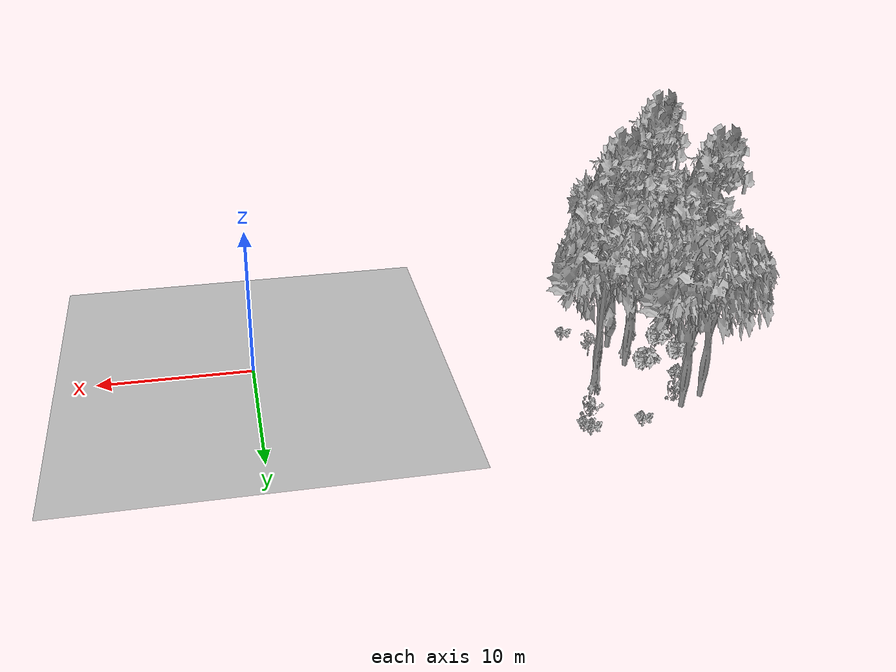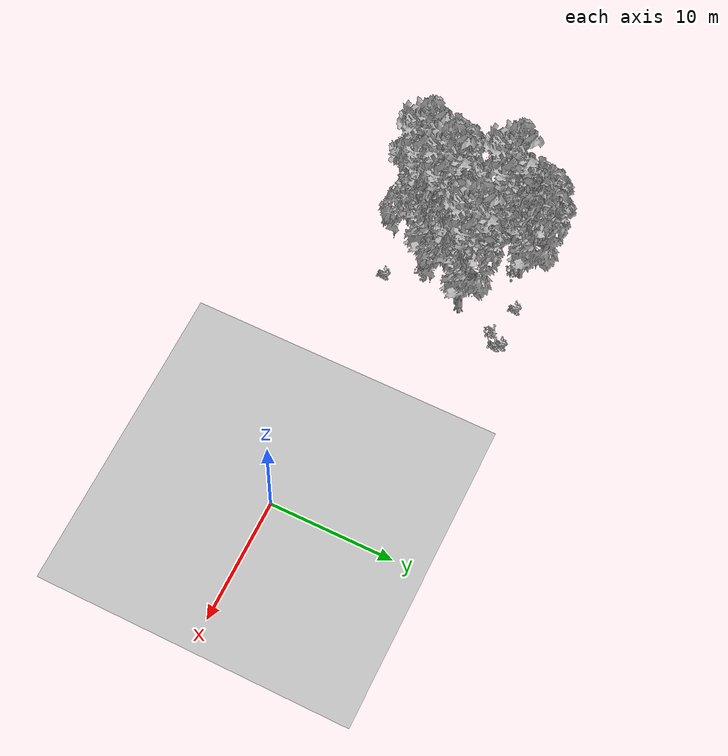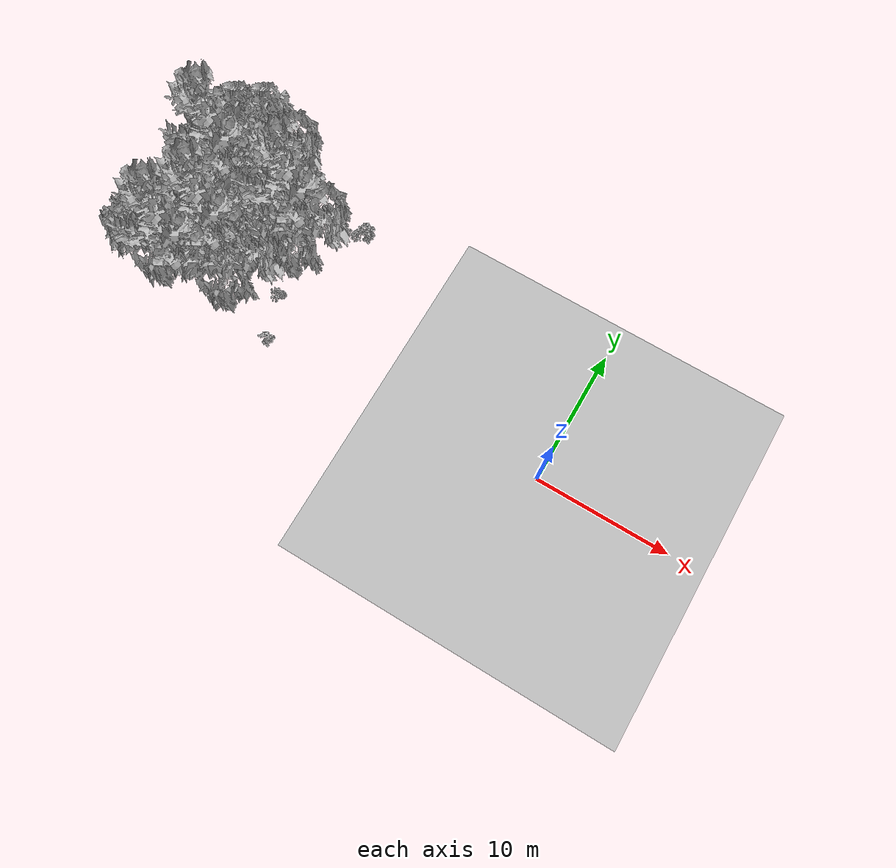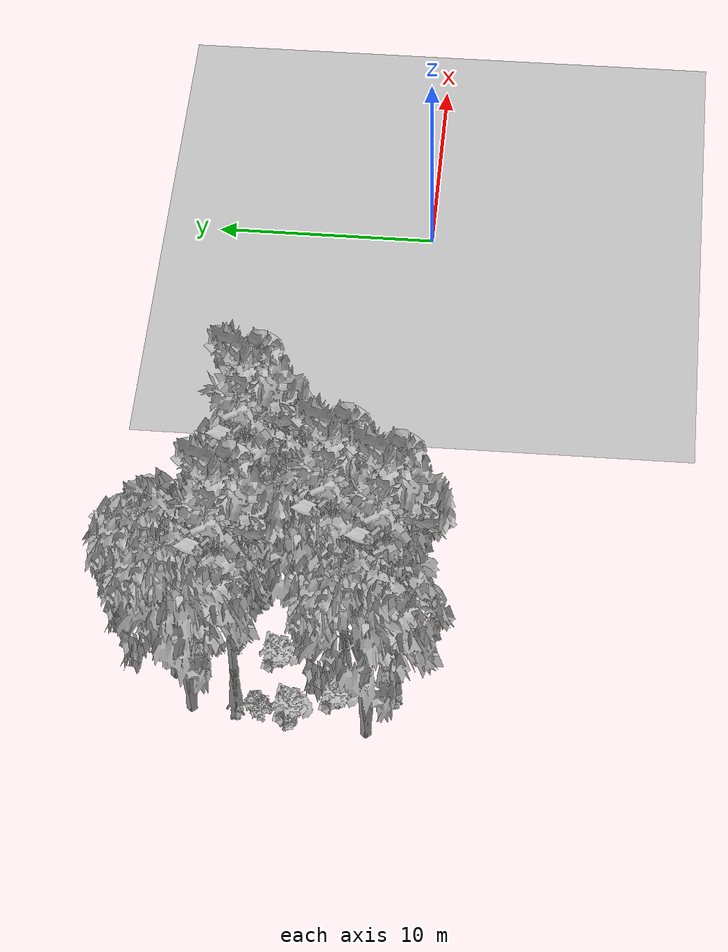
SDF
<sdf version="1.7">
 <world name="default">
  <model name="ground_plane">
   <static>1</static>
   <link name="link">
    <collision name="collision">
     <pose>-50 0 0 0 -0 0</pose>
     <geometry><plane><normal>0 0 1</normal><size>80 80</size></plane></geometry>
     <surface><contact><ode><min_depth>0.01</min_depth><max_vel>0</max_vel></ode></contact></surface>
    </collision>
    <visual name="grass">
     <cast_shadows>0</cast_shadows>
     <geometry>
      <mesh>
       <scale>0.46714285714285714 0.46714285714285714 0.1</scale>
       <uri>file://grass_plane/meshes/grass_plane.dae</uri>
      </mesh>
     </geometry>
    </visual>
   </link>
  </model>
  <model name="Tree 159">
   <static>1</static>
   <pose>-24.911423069452937 1.764224771700782 0 1.57079 -0 0</pose>
   <link name="link">
    <collision name="collision">
     <geometry><mesh><scale>3.5 5 3.5</scale><uri>model://tree_9/meshes/tree_9.obj</uri></mesh></geometry>
    </collision>
    <visual name="visual">
     <geometry><mesh><scale>3.5 5 3.5</scale><uri>model://tree_9/meshes/tree_9.obj</uri></mesh></geometry>
    </visual>
   </link>
  </model>
  <model name="Tree 245">
   <static>1</static>
   <pose>-28.339053544495343 0.5656820611772702 0 1.57079 -0 0</pose>
   <link name="link">
    <collision name="collision">
     <geometry><mesh><scale>3.5 5 3.5</scale><uri>model://tree_2/meshes/tree_2.obj</uri></mesh></geometry>
    </collision>
    <visual name="visual">
     <geometry><mesh><scale>3.5 5 3.5</scale><uri>model://tree_2/meshes/tree_2.obj</uri></mesh></geometry>
    </visual>
   </link>
  </model>
  <model name="Tree 246">
   <static>1</static>
   <pose>-27.566099973097685 7.866502859394124 0 1.57079 -0 0</pose>
   <link name="link">
    <collision name="collision">
     <geometry><mesh><scale>3.5 5 3.5</scale><uri>model://tree_2/meshes/tree_2.obj</uri></mesh></geometry>
    </collision>
    <visual name="visual">
     <geometry><mesh><scale>3.5 5 3.5</scale><uri>model://tree_2/meshes/tree_2.obj</uri></mesh></geometry>
    </visual>
   </link>
  </model>
  <model name="Tree 287">
   <static>1</static>
   <pose>-26.115918814455213 -0.43354290498221815 0 1.57079 -0 0</pose>
   <link name="link">
    <collision name="collision">
     <geometry><mesh><scale>3.5 5 3.5</scale><uri>model://tree_9/meshes/tree_9.obj</uri></mesh></geometry>
    </collision>
    <visual name="visual">
     <geometry><mesh><scale>3.5 5 3.5</scale><uri>model://tree_9/meshes/tree_9.obj</uri></mesh></geometry>
    </visual>
   </link>
  </model>
  <model name="Tree 354">
   <static>1</static>
   <pose>-23.87134144176006 1.2310103569757302 0 1.57079 -0 0</pose>
   <link name="link">
    <collision name="collision">
     <geometry><mesh><scale>3.5 5 3.5</scale><uri>model://tree_2/meshes/tree_2.obj</uri></mesh></geometry>
    </collision>
    <visual name="visual">
     <geometry><mesh><scale>3.5 5 3.5</scale><uri>model://tree_2/meshes/tree_2.obj</uri></mesh></geometry>
    </visual>
   </link>
  </model>
  <model name="Tree 374">
   <static>1</static>
   <pose>-24.205251933002387 3.625154455407227 0 1.57079 -0 0</pose>
   <link name="link">
    <collision name="collision">
     <geometry><mesh><scale>3.5 5 3.5</scale><uri>model://tree_2/meshes/tree_2.obj</uri></mesh></geometry>
    </collision>
    <visual name="visual">
     <geometry><mesh><scale>3.5 5 3.5</scale><uri>model://tree_2/meshes/tree_2.obj</uri></mesh></geometry>
    </visual>
   </link>
  </model>
  <model name="Tree 384">
   <static>1</static>
   <pose>-21.531050936556625 5.283478019215991 0 1.57079 -0 0</pose>
   <link name="link">
    <collision name="collision">
     <geometry><mesh><scale>3.5 5 3.5</scale><uri>model://tree_2/meshes/tree_2.obj</uri></mesh></geometry>
    </collision>
    <visual name="visual">
     <geometry><mesh><scale>3.5 5 3.5</scale><uri>model://tree_2/meshes/tree_2.obj</uri></mesh></geometry>
    </visual>
   </link>
  </model>
  <model name="Tree 439">
   <static>1</static>
   <pose>-21.388681004511675 5.53001409025039 0 1.57079 -0 0</pose>
   <link name="link">
    <collision name="collision">
     <geometry><mesh><scale>3.5 5 3.5</scale><uri>model://tree_9/meshes/tree_9.obj</uri></mesh></geometry>
    </collision>
    <visual name="visual">
     <geometry><mesh><scale>3.5 5 3.5</scale><uri>model://tree_9/meshes/tree_9.obj</uri></mesh></geometry>
    </visual>
   </link>
  </model>
  <model name="Tree 455">
   <static>1</static>
   <pose>-25.9473663055892 8.734739117881041 0 1.57079 -0 0</pose>
   <link name="link">
    <collision name="collision">
     <geometry><mesh><scale>3.5 5 3.5</scale><uri>model://tree_2/meshes/tree_2.obj</uri></mesh></geometry>
    </collision>
    <visual name="visual">
     <geometry><mesh><scale>3.5 5 3.5</scale><uri>model://tree_2/meshes/tree_2.obj</uri></mesh></geometry>
    </visual>
   </link>
  </model>
  <model name="Tree 556">
   <static>1</static>
   <pose>-27.158112027316754 6.085042137298338 0 1.57079 -0 0</pose>
   <link name="link">
    <collision name="collision">
     <geometry><mesh><scale>3.5 5 3.5</scale><uri>model://tree_9/meshes/tree_9.obj</uri></mesh></geometry>
    </collision>
    <visual name="visual">
     <geometry><mesh><scale>3.5 5 3.5</scale><uri>model://tree_9/meshes/tree_9.obj</uri></mesh></geometry>
    </visual>
   </link>
  </model>
  <model name="Bush 57">
   <static>1</static>
   <pose>-28.18122105445586 3.7748733802997876 0 1.57079 -0 0</pose>
   <link name="link">
    <collision name="collision">
     <geometry><mesh><scale>2 2 2</scale><uri>model://bush_0/meshes/bush_0.obj</uri></mesh></geometry>
     <surface><contact><collide_without_contact>false</collide_without_contact></contact></surface>
    </collision>
    <visual name="visual">
     <geometry><mesh><scale>2 2 2</scale><uri>model://bush_0/meshes/bush_0.obj</uri></mesh></geometry>
    </visual>
   </link>
  </model>
  <model name="Bush 74">
   <static>1</static>
   <pose>-27.02103915889475 5.263156424095065 0 1.57079 -0 0</pose>
   <link name="link">
    <collision name="collision">
     <geometry><mesh><scale>2 2 2</scale><uri>model://bush_2/meshes/bush_2.obj</uri></mesh></geometry>
     <surface><contact><collide_without_contact>false</collide_without_contact></contact></surface>
    </collision>
    <visual name="visual">
     <geometry><mesh><scale>2 2 2</scale><uri>model://bush_2/meshes/bush_2.obj</uri></mesh></geometry>
    </visual>
   </link>
  </model>
  <model name="Bush 117">
   <static>1</static>
   <pose>-25.614436540656 8.121075534791927 0 1.57079 -0 0</pose>
   <link name="link">
    <collision name="collision">
     <geometry><mesh><scale>2 2 2</scale><uri>model://bush_4/meshes/bush_4.obj</uri></mesh></geometry>
     <surface><contact><collide_without_contact>false</collide_without_contact></contact></surface>
    </collision>
    <visual name="visual">
     <geometry><mesh><scale>2 2 2</scale><uri>model://bush_4/meshes/bush_4.obj</uri></mesh></geometry>
    </visual>
   </link>
  </model>
  <model name="Bush 136">
   <static>1</static>
   <pose>-21.3543819846842 -0.9212055128727954 0 1.57079 -0 0</pose>
   <link name="link">
    <collision name="collision">
     <geometry><mesh><scale>2 2 2</scale><uri>model://bush_2/meshes/bush_2.obj</uri></mesh></geometry>
     <surface><contact><collide_without_contact>false</collide_without_contact></contact></surface>
    </collision>
    <visual name="visual">
     <geometry><mesh><scale>2 2 2</scale><uri>model://bush_2/meshes/bush_2.obj</uri></mesh></geometry>
    </visual>
   </link>
  </model>
  <model name="Bush 233">
   <static>1</static>
   <pose>-27.027912882608106 1.78998632643615 0 1.57079 -0 0</pose>
   <link name="link">
    <collision name="collision">
     <geometry><mesh><scale>2 2 2</scale><uri>model://bush_1/meshes/bush_1.obj</uri></mesh></geometry>
     <surface><contact><collide_without_contact>false</collide_without_contact></contact></surface>
    </collision>
    <visual name="visual">
     <geometry><mesh><scale>2 2 2</scale><uri>model://bush_1/meshes/bush_1.obj</uri></mesh></geometry>
    </visual>
   </link>
  </model>
  <model name="Bush 239">
   <static>1</static>
   <pose>-27.721462547663528 3.625378649440762 0 1.57079 -0 0</pose>
   <link name="link">
    <collision name="collision">
     <geometry><mesh><scale>2 2 2</scale><uri>model://bush_1/meshes/bush_1.obj</uri></mesh></geometry>
     <surface><contact><collide_without_contact>false</collide_without_contact></contact></surface>
    </collision>
    <visual name="visual">
     <geometry><mesh><scale>2 2 2</scale><uri>model://bush_1/meshes/bush_1.obj</uri></mesh></geometry>
    </visual>
   </link>
  </model>
  <model name="Bush 260">
   <static>1</static>
   <pose>-23.080275025046436 9.59756881818138 0 1.57079 -0 0</pose>
   <link name="link">
    <collision name="collision">
     <geometry><mesh><scale>2 2 2</scale><uri>model://bush_2/meshes/bush_2.obj</uri></mesh></geometry>
     <surface><contact><collide_without_contact>false</collide_without_contact></contact></surface>
    </collision>
    <visual name="visual">
     <geometry><mesh><scale>2 2 2</scale><uri>model://bush_2/meshes/bush_2.obj</uri></mesh></geometry>
    </visual>
   </link>
  </model>
  <model name="Bush 287">
   <static>1</static>
   <pose>-19.890833808021615 8.778353602341326 0 1.57079 -0 0</pose>
   <link name="link">
    <collision name="collision">
     <geometry><mesh><scale>2 2 2</scale><uri>model://bush_4/meshes/bush_4.obj</uri></mesh></geometry>
     <surface><contact><collide_without_contact>false</collide_without_contact></contact></surface>
    </collision>
    <visual name="visual">
     <geometry><mesh><scale>2 2 2</scale><uri>model://bush_4/meshes/bush_4.obj</uri></mesh></geometry>
    </visual>
   </link>
  </model>
  <model name="Bush 353">
   <static>1</static>
   <pose>-19.712107820767663 9.877040965449801 0 1.57079 -0 0</pose>
   <link name="link">
    <collision name="collision">
     <geometry><mesh><scale>2 2 2</scale><uri>model://bush_2/meshes/bush_2.obj</uri></mesh></geometry>
     <surface><contact><collide_without_contact>false</collide_without_contact></contact></surface>
    </collision>
    <visual name="visual">
     <geometry><mesh><scale>2 2 2</scale><uri>model://bush_2/meshes/bush_2.obj</uri></mesh></geometry>
    </visual>
   </link>
  </model>
  <model name="Bush 557">
   <static>1</static>
   <pose>-22.071584366528217 2.163683945331897 0 1.57079 -0 0</pose>
   <link name="link">
    <collision name="collision">
     <geometry><mesh><scale>2 2 2</scale><uri>model://bush_5/meshes/bush_5.obj</uri></mesh></geometry>
     <surface><contact><collide_without_contact>false</collide_without_contact></contact></surface>
    </collision>
    <visual name="visual">
     <geometry><mesh><scale>2 2 2</scale><uri>model://bush_5/meshes/bush_5.obj</uri></mesh></geometry>
    </visual>
   </link>
  </model>
  <model name="Bush 575">
   <static>1</static>
   <pose>-19.435951312418823 9.457448703700294 0 1.57079 -0 0</pose>
   <link name="link">
    <collision name="collision">
     <geometry><mesh><scale>2 2 2</scale><uri>model://bush_2/meshes/bush_2.obj</uri></mesh></geometry>
     <surface><contact><collide_without_contact>false</collide_without_contact></contact></surface>
    </collision>
    <visual name="visual">
     <geometry><mesh><scale>2 2 2</scale><uri>model://bush_2/meshes/bush_2.obj</uri></mesh></geometry>
    </visual>
   </link>
  </model>
  <model name="Bush 607">
   <static>1</static>
   <pose>-25.106532611559693 4.387350357101653 0 1.57079 -0 0</pose>
   <link name="link">
    <collision name="collision">
     <geometry><mesh><scale>2 2 2</scale><uri>model://bush_1/meshes/bush_1.obj</uri></mesh></geometry>
     <surface><contact><collide_without_contact>false</collide_without_contact></contact></surface>
    </collision>
    <visual name="visual">
     <geometry><mesh><scale>2 2 2</scale><uri>model://bush_1/meshes/bush_1.obj</uri></mesh></geometry>
    </visual>
   </link>
  </model>
  <model name="Bush 613">
   <static>1</static>
   <pose>-27.3878627756347 4.980750997038797 0 1.57079 -0 0</pose>
   <link name="link">
    <collision name="collision">
     <geometry><mesh><scale>2 2 2</scale><uri>model://bush_2/meshes/bush_2.obj</uri></mesh></geometry>
     <surface><contact><collide_without_contact>false</collide_without_contact></contact></surface>
    </collision>
    <visual name="visual">
     <geometry><mesh><scale>2 2 2</scale><uri>model://bush_2/meshes/bush_2.obj</uri></mesh></geometry>
    </visual>
   </link>
  </model>
 </world>
</sdf>
